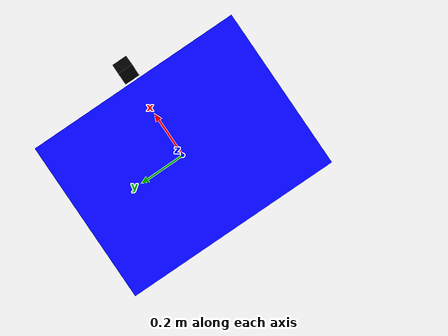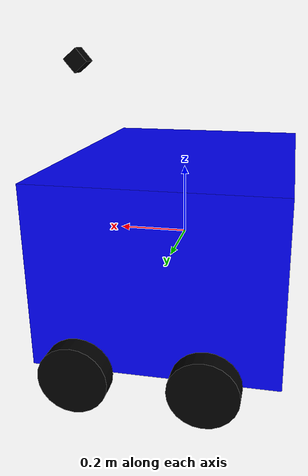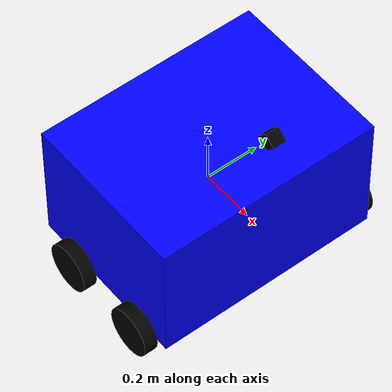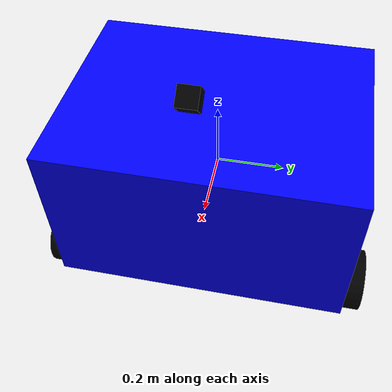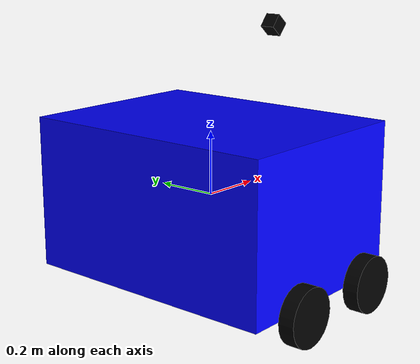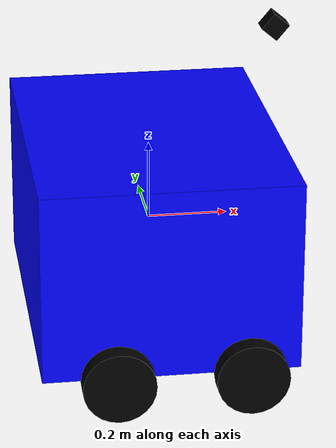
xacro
<?xml version="1.0" ?>
<robot name="fb_robot" xmlns:xacro="http://www.ros.org/wiki/xacro">

  <!-- Base link -->
  <link name="base_link">
    <visual>
      <geometry>
        <box size="0.635 0.846 0.48"/>
      </geometry>
      <material name="blue">
        <color rgba="0 0 1 1"/>
      </material>
    </visual>
    <collision>
      <geometry>
        <box size="0.635 0.846 0.48"/>
      </geometry>
    </collision>
    <inertial>
      <mass value="1.0"/>
      <origin xyz="0 0 0"/>
      <inertia ixx="0.1" iyy="0.1" izz="0.1"
               ixy="0.0" ixz="0.0" iyz="0.0"/>
    </inertial>
  </link>

  <!-- Wheel macro -->
  <xacro:macro name="wheel" params="name x y z driven">

    <link name="${name}_link">
      <visual>
        <geometry>
          <cylinder radius="0.09" length="0.05"/>
        </geometry>
        <material name="black">
          <color rgba="0 0 0 1"/>
        </material>
        <origin rpy="1.5708 0 0" xyz="0 0 0"/>
      </visual>

      <collision>
        <geometry>
          <cylinder radius="0.09" length="0.05"/>
        </geometry>
        <origin rpy="1.5708 0 0" xyz="0 0 0"/>

        <surface>
          <friction>
            <ode>

              <!-- Driven wheels (rear) -->
              <xacro:if value="${driven}">
                <mu>1.0</mu>
                <mu2>0.1</mu2>
              </xacro:if>

              <!-- Passive wheels (front) -->
              <xacro:unless value="${driven}">
                <mu>0.8</mu>
                <mu2>0.01</mu2>
              </xacro:unless>

              <!-- Rolling direction -->
              <fdir1>1 0 0</fdir1>

            </ode>
          </friction>
        </surface>

      </collision>

      <inertial>
        <mass value="0.2"/>
        <origin xyz="0 0 0"/>
        <inertia ixx="0.001" iyy="0.001" izz="0.001"
                 ixy="0.0" ixz="0.0" iyz="0.0"/>
      </inertial>
    </link>

    <!-- Joint -->
    <joint name="${name}_joint" type="continuous">
      <parent link="base_link"/>
      <child link="${name}_link"/>
      <origin xyz="${x} ${y} ${z}" rpy="0 0 0"/>
      <axis xyz="0 1 0"/>
      <limit effort="30.0" velocity="20.0"/>
    </joint>

    <!-- Transmission (only for driven wheels) -->
    <xacro:if value="${driven}">
      <transmission name="${name}_trans">
        <type>transmission_interface/SimpleTransmission</type>
        <joint name="${name}_joint">
          <hardwareInterface>hardware_interface/VelocityJointInterface</hardwareInterface>
        </joint>
        <actuator name="${name}_motor">
          <hardwareInterface>hardware_interface/VelocityJointInterface</hardwareInterface>
          <mechanicalReduction>1</mechanicalReduction>
        </actuator>
      </transmission>
    </xacro:if>

  </xacro:macro>

  <!-- Wheels -->
  <xacro:wheel name="front_left_wheel"  x="0.191"  y="0.454" z="-0.24" driven="false"/>
  <xacro:wheel name="front_right_wheel" x="0.191"  y="-0.454" z="-0.24" driven="false"/>
  <xacro:wheel name="rear_left_wheel"   x="-0.135" y="0.454" z="-0.24" driven="true"/>
  <xacro:wheel name="rear_right_wheel"  x="-0.135" y="-0.454" z="-0.24" driven="true"/>

  <link name="collector_camera_link">
    <visual>
      <geometry>
        <box size="0.05 0.05 0.05"/>
      </geometry>
      <material name="black"/>
    </visual>
  </link>

  <joint name="collector_camera_joint" type="fixed">
    <parent link="base_link"/>
    <child link="collector_camera_link"/>
    <origin xyz="0.315 0.0 0.5" rpy="0 0.7 0"/>
  </joint>

  <link name="collector_camera_optical_frame"/>

  <joint name="collector_camera_optical_joint" type="fixed">
    <parent link="collector_camera_link"/>
    <child link="collector_camera_optical_frame"/>
    <origin xyz="0 0 0" rpy="0 0 0"/>
  </joint>

  <gazebo reference="collector_camera_link">
    <sensor name="collector_camera_sensor" type="camera">
      <update_rate>30</update_rate>
      <camera>
        <horizontal_fov>1.30</horizontal_fov>
        <image>
          <width>320</width>
          <height>240</height>
          <format>R8G8B8</format>
        </image>
        <clip>
          <near>0.1</near>
          <far>100</far>
        </clip>
      </camera>

      <plugin name="gazebo_ros_camera" filename="libgazebo_ros_camera.so">
        <ros>
          <namespace>/camera</namespace>
          <remapping>image_raw:=image_raw</remapping>
        </ros>
        <camera_name>collector</camera_name>
        <frame_name>collector_camera_optical_frame</frame_name>
      </plugin>
    </sensor>
  </gazebo>

  <!-- ros2_control -->
  <ros2_control name="fb_robot" type="system">
    <hardware>
      <plugin>gazebo_ros2_control/GazeboSystem</plugin>
    </hardware>

    <joint name="rear_left_wheel_joint">
      <command_interface name="velocity"/>
      <state_interface name="position"/>
      <state_interface name="velocity"/>
    </joint>

    <joint name="rear_right_wheel_joint">
      <command_interface name="velocity"/>
      <state_interface name="position"/>
      <state_interface name="velocity"/>
    </joint>
  </ros2_control>

  <!-- Gazebo plugin -->
  <gazebo>
    <plugin name="gazebo_ros2_control" filename="libgazebo_ros2_control.so">
      <parameters>$(arg controller_config)</parameters>
    </plugin>
  </gazebo>

</robot>
